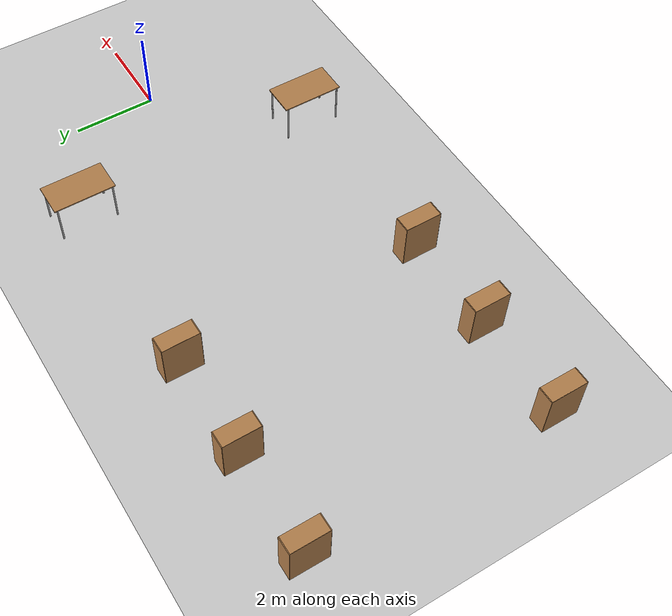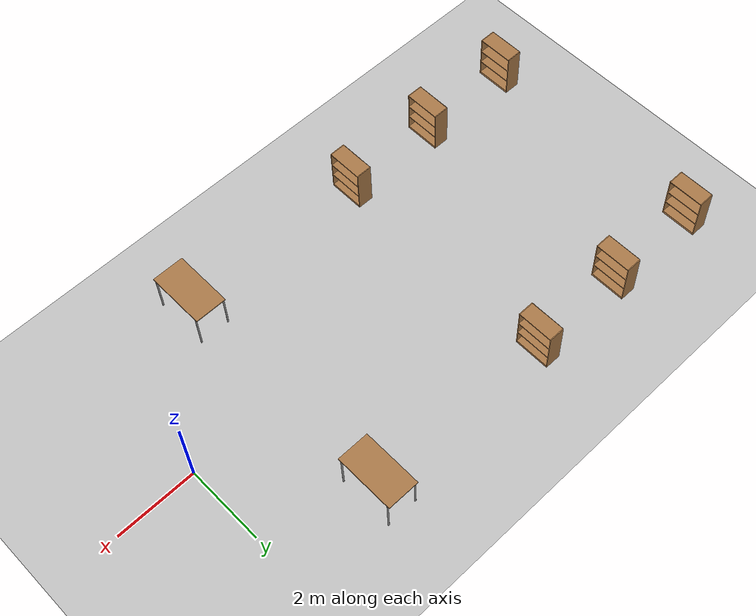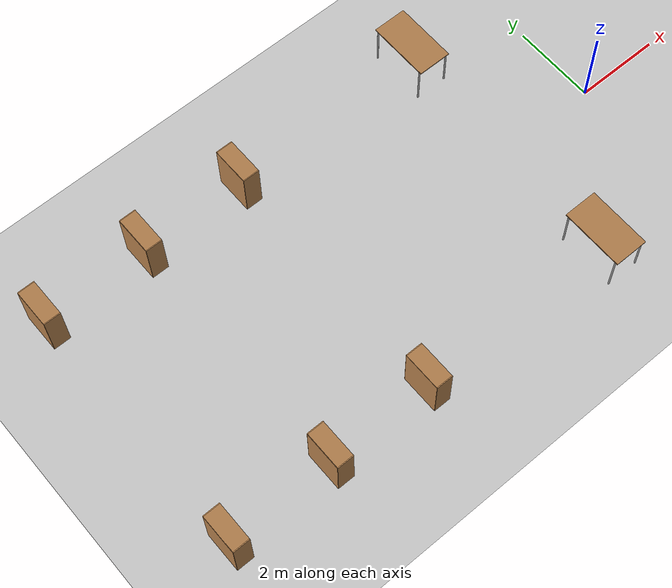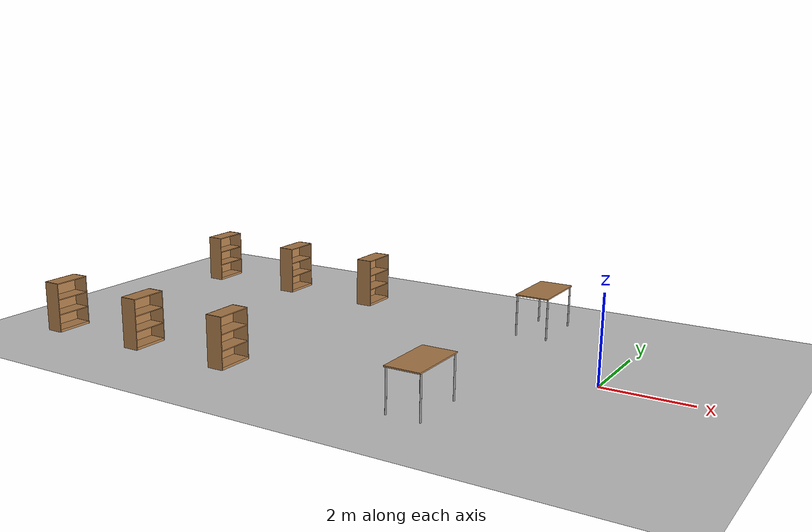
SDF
<sdf version="1.6">
 <world name="default">
  <model name="ground_plane">
   <static>1</static>
   <link name="link">
    <collision name="collision">
     <geometry><plane><normal>0 0 1</normal><size>100 100</size></plane></geometry>
     <surface><friction><ode><mu>100</mu><mu2>50</mu2></ode></friction></surface>
    </collision>
    <visual name="visual">
     <cast_shadows>0</cast_shadows>
     <geometry><plane><normal>0 0 1</normal><size>100 100</size></plane></geometry>
     <material>
      <script><uri>file://media/materials/scripts/gazebo.material</uri><name>Gazebo/Grey</name></script>
     </material>
    </visual>
   </link>
  </model>
  <model name="table">
   <static>1</static>
   <link name="link">
    <collision name="surface">
     <pose>0 0 1 0 -0 0</pose>
     <geometry><box><size>1.5 0.8 0.03</size></box></geometry>
     <surface><friction><ode><mu>0.6</mu><mu2>0.6</mu2></ode></friction></surface>
    </collision>
    <visual name="visual1">
     <pose>0 0 1 0 -0 0</pose>
     <geometry><box><size>1.5 0.8 0.03</size></box></geometry>
     <material>
      <script><uri>file://media/materials/scripts/gazebo.material</uri><name>Gazebo/Wood</name></script>
     </material>
    </visual>
    <collision name="front_left_leg">
     <pose>0.68 0.38 0.5 0 -0 0</pose>
     <geometry><cylinder><radius>0.02</radius><length>1</length></cylinder></geometry>
    </collision>
    <visual name="front_left_leg">
     <pose>0.68 0.38 0.5 0 -0 0</pose>
     <geometry><cylinder><radius>0.02</radius><length>1</length></cylinder></geometry>
     <material>
      <script><uri>file://media/materials/scripts/gazebo.material</uri><name>Gazebo/Grey</name></script>
     </material>
    </visual>
    <collision name="front_right_leg">
     <pose>0.68 -0.38 0.5 0 -0 0</pose>
     <geometry><cylinder><radius>0.02</radius><length>1</length></cylinder></geometry>
    </collision>
    <visual name="front_right_leg">
     <pose>0.68 -0.38 0.5 0 -0 0</pose>
     <geometry><cylinder><radius>0.02</radius><length>1</length></cylinder></geometry>
     <material>
      <script><uri>file://media/materials/scripts/gazebo.material</uri><name>Gazebo/Grey</name></script>
     </material>
    </visual>
    <collision name="back_right_leg">
     <pose>-0.68 -0.38 0.5 0 -0 0</pose>
     <geometry><cylinder><radius>0.02</radius><length>1</length></cylinder></geometry>
    </collision>
    <visual name="back_right_leg">
     <pose>-0.68 -0.38 0.5 0 -0 0</pose>
     <geometry><cylinder><radius>0.02</radius><length>1</length></cylinder></geometry>
     <material>
      <script><uri>file://media/materials/scripts/gazebo.material</uri><name>Gazebo/Grey</name></script>
     </material>
    </visual>
    <collision name="back_left_leg">
     <pose>-0.68 0.38 0.5 0 -0 0</pose>
     <geometry><cylinder><radius>0.02</radius><length>1</length></cylinder></geometry>
    </collision>
    <visual name="back_left_leg">
     <pose>-0.68 0.38 0.5 0 -0 0</pose>
     <geometry><cylinder><radius>0.02</radius><length>1</length></cylinder></geometry>
     <material>
      <script><uri>file://media/materials/scripts/gazebo.material</uri><name>Gazebo/Grey</name></script>
     </material>
    </visual>
   </link>
   <pose>-2.5 3 0 0 -0 1.5707</pose>
  </model>
  <model name="table_clone_0">
   <static>1</static>
   <link name="link">
    <collision name="surface">
     <pose>0 0 1 0 -0 0</pose>
     <geometry><box><size>1.5 0.8 0.03</size></box></geometry>
     <surface><friction><ode><mu>0.6</mu><mu2>0.6</mu2></ode></friction></surface>
    </collision>
    <visual name="visual1">
     <pose>0 0 1 0 -0 0</pose>
     <geometry><box><size>1.5 0.8 0.03</size></box></geometry>
     <material>
      <script><uri>file://media/materials/scripts/gazebo.material</uri><name>Gazebo/Wood</name></script>
     </material>
    </visual>
    <collision name="front_left_leg">
     <pose>0.68 0.38 0.5 0 -0 0</pose>
     <geometry><cylinder><radius>0.02</radius><length>1</length></cylinder></geometry>
    </collision>
    <visual name="front_left_leg">
     <pose>0.68 0.38 0.5 0 -0 0</pose>
     <geometry><cylinder><radius>0.02</radius><length>1</length></cylinder></geometry>
     <material>
      <script><uri>file://media/materials/scripts/gazebo.material</uri><name>Gazebo/Grey</name></script>
     </material>
    </visual>
    <collision name="front_right_leg">
     <pose>0.68 -0.38 0.5 0 -0 0</pose>
     <geometry><cylinder><radius>0.02</radius><length>1</length></cylinder></geometry>
    </collision>
    <visual name="front_right_leg">
     <pose>0.68 -0.38 0.5 0 -0 0</pose>
     <geometry><cylinder><radius>0.02</radius><length>1</length></cylinder></geometry>
     <material>
      <script><uri>file://media/materials/scripts/gazebo.material</uri><name>Gazebo/Grey</name></script>
     </material>
    </visual>
    <collision name="back_right_leg">
     <pose>-0.68 -0.38 0.5 0 -0 0</pose>
     <geometry><cylinder><radius>0.02</radius><length>1</length></cylinder></geometry>
    </collision>
    <visual name="back_right_leg">
     <pose>-0.68 -0.38 0.5 0 -0 0</pose>
     <geometry><cylinder><radius>0.02</radius><length>1</length></cylinder></geometry>
     <material>
      <script><uri>file://media/materials/scripts/gazebo.material</uri><name>Gazebo/Grey</name></script>
     </material>
    </visual>
    <collision name="back_left_leg">
     <pose>-0.68 0.38 0.5 0 -0 0</pose>
     <geometry><cylinder><radius>0.02</radius><length>1</length></cylinder></geometry>
    </collision>
    <visual name="back_left_leg">
     <pose>-0.68 0.38 0.5 0 -0 0</pose>
     <geometry><cylinder><radius>0.02</radius><length>1</length></cylinder></geometry>
     <material>
      <script><uri>file://media/materials/scripts/gazebo.material</uri><name>Gazebo/Grey</name></script>
     </material>
    </visual>
   </link>
   <pose>-2.5 -3 0 0 -0 1.5707</pose>
  </model>
  <model name="bookshelf_0">
   <static>1</static>
   <link name="link">
    <inertial><mass>1</mass></inertial>
    <collision name="back">
     <pose>0 0.005 0.6 0 -0 0</pose>
     <geometry><box><size>0.9 0.01 1.2</size></box></geometry>
    </collision>
    <visual name="visual1">
     <pose>0 0.005 0.6 0 -0 0</pose>
     <geometry><box><size>0.9 0.01 1.2</size></box></geometry>
     <material>
      <script><uri>file://media/materials/scripts/gazebo.material</uri><name>Gazebo/Wood</name></script>
     </material>
    </visual>
    <collision name="left_side">
     <pose>0.45 -0.195 0.6 0 -0 0</pose>
     <geometry><box><size>0.02 0.4 1.2</size></box></geometry>
    </collision>
    <visual name="visual2">
     <pose>0.45 -0.195 0.6 0 -0 0</pose>
     <geometry><box><size>0.02 0.4 1.2</size></box></geometry>
     <material>
      <script><uri>file://media/materials/scripts/gazebo.material</uri><name>Gazebo/Wood</name></script>
     </material>
    </visual>
    <collision name="right_side">
     <pose>-0.45 -0.195 0.6 0 -0 0</pose>
     <geometry><box><size>0.02 0.4 1.2</size></box></geometry>
    </collision>
    <visual name="visual3">
     <pose>-0.45 -0.195 0.6 0 -0 0</pose>
     <geometry><box><size>0.02 0.4 1.2</size></box></geometry>
     <material>
      <script><uri>file://media/materials/scripts/gazebo.material</uri><name>Gazebo/Wood</name></script>
     </material>
    </visual>
    <collision name="bottom">
     <pose>0 -0.195 0.03 0 -0 0</pose>
     <geometry><box><size>0.88 0.4 0.06</size></box></geometry>
    </collision>
    <visual name="visual4">
     <pose>0 -0.195 0.03 0 -0 0</pose>
     <geometry><box><size>0.88 0.4 0.06</size></box></geometry>
     <material>
      <script><uri>file://media/materials/scripts/gazebo.material</uri><name>Gazebo/Wood</name></script>
     </material>
    </visual>
    <collision name="top">
     <pose>0 -0.195 1.19 0 -0 0</pose>
     <geometry><box><size>0.88 0.4 0.02</size></box></geometry>
    </collision>
    <visual name="visual5">
     <pose>0 -0.195 1.19 0 -0 0</pose>
     <geometry><box><size>0.88 0.4 0.02</size></box></geometry>
     <material>
      <script><uri>file://media/materials/scripts/gazebo.material</uri><name>Gazebo/Wood</name></script>
     </material>
    </visual>
    <collision name="low_shelf">
     <pose>0 -0.195 0.43 0 -0 0</pose>
     <geometry><box><size>0.88 0.4 0.02</size></box></geometry>
    </collision>
    <visual name="visual6">
     <pose>0 -0.195 0.43 0 -0 0</pose>
     <geometry><box><size>0.88 0.4 0.02</size></box></geometry>
     <material>
      <script><uri>file://media/materials/scripts/gazebo.material</uri><name>Gazebo/Wood</name></script>
     </material>
    </visual>
    <collision name="high_shelf">
     <pose>0 -0.195 0.8 0 -0 0</pose>
     <geometry><box><size>0.88 0.4 0.02</size></box></geometry>
    </collision>
    <visual name="visual7">
     <pose>0 -0.195 0.8 0 -0 0</pose>
     <geometry><box><size>0.88 0.4 0.02</size></box></geometry>
     <material>
      <script><uri>file://media/materials/scripts/gazebo.material</uri><name>Gazebo/Wood</name></script>
     </material>
    </visual>
   </link>
   <pose>-7.5 -3 0 0 -0 1.5707</pose>
  </model>
  <model name="bookshelf_0_clone">
   <static>1</static>
   <link name="link">
    <inertial><mass>1</mass></inertial>
    <collision name="back">
     <pose>0 0.005 0.6 0 -0 0</pose>
     <geometry><box><size>0.9 0.01 1.2</size></box></geometry>
    </collision>
    <visual name="visual1">
     <pose>0 0.005 0.6 0 -0 0</pose>
     <geometry><box><size>0.9 0.01 1.2</size></box></geometry>
     <material>
      <script><uri>file://media/materials/scripts/gazebo.material</uri><name>Gazebo/Wood</name></script>
     </material>
    </visual>
    <collision name="left_side">
     <pose>0.45 -0.195 0.6 0 -0 0</pose>
     <geometry><box><size>0.02 0.4 1.2</size></box></geometry>
    </collision>
    <visual name="visual2">
     <pose>0.45 -0.195 0.6 0 -0 0</pose>
     <geometry><box><size>0.02 0.4 1.2</size></box></geometry>
     <material>
      <script><uri>file://media/materials/scripts/gazebo.material</uri><name>Gazebo/Wood</name></script>
     </material>
    </visual>
    <collision name="right_side">
     <pose>-0.45 -0.195 0.6 0 -0 0</pose>
     <geometry><box><size>0.02 0.4 1.2</size></box></geometry>
    </collision>
    <visual name="visual3">
     <pose>-0.45 -0.195 0.6 0 -0 0</pose>
     <geometry><box><size>0.02 0.4 1.2</size></box></geometry>
     <material>
      <script><uri>file://media/materials/scripts/gazebo.material</uri><name>Gazebo/Wood</name></script>
     </material>
    </visual>
    <collision name="bottom">
     <pose>0 -0.195 0.03 0 -0 0</pose>
     <geometry><box><size>0.88 0.4 0.06</size></box></geometry>
    </collision>
    <visual name="visual4">
     <pose>0 -0.195 0.03 0 -0 0</pose>
     <geometry><box><size>0.88 0.4 0.06</size></box></geometry>
     <material>
      <script><uri>file://media/materials/scripts/gazebo.material</uri><name>Gazebo/Wood</name></script>
     </material>
    </visual>
    <collision name="top">
     <pose>0 -0.195 1.19 0 -0 0</pose>
     <geometry><box><size>0.88 0.4 0.02</size></box></geometry>
    </collision>
    <visual name="visual5">
     <pose>0 -0.195 1.19 0 -0 0</pose>
     <geometry><box><size>0.88 0.4 0.02</size></box></geometry>
     <material>
      <script><uri>file://media/materials/scripts/gazebo.material</uri><name>Gazebo/Wood</name></script>
     </material>
    </visual>
    <collision name="low_shelf">
     <pose>0 -0.195 0.43 0 -0 0</pose>
     <geometry><box><size>0.88 0.4 0.02</size></box></geometry>
    </collision>
    <visual name="visual6">
     <pose>0 -0.195 0.43 0 -0 0</pose>
     <geometry><box><size>0.88 0.4 0.02</size></box></geometry>
     <material>
      <script><uri>file://media/materials/scripts/gazebo.material</uri><name>Gazebo/Wood</name></script>
     </material>
    </visual>
    <collision name="high_shelf">
     <pose>0 -0.195 0.8 0 -0 0</pose>
     <geometry><box><size>0.88 0.4 0.02</size></box></geometry>
    </collision>
    <visual name="visual7">
     <pose>0 -0.195 0.8 0 -0 0</pose>
     <geometry><box><size>0.88 0.4 0.02</size></box></geometry>
     <material>
      <script><uri>file://media/materials/scripts/gazebo.material</uri><name>Gazebo/Wood</name></script>
     </material>
    </visual>
   </link>
   <pose>-10 -3 0 0 -0 1.5707</pose>
  </model>
  <model name="bookshelf_0_clone_0">
   <static>1</static>
   <link name="link">
    <inertial><mass>1</mass></inertial>
    <collision name="back">
     <pose>0 0.005 0.6 0 -0 0</pose>
     <geometry><box><size>0.9 0.01 1.2</size></box></geometry>
    </collision>
    <visual name="visual1">
     <pose>0 0.005 0.6 0 -0 0</pose>
     <geometry><box><size>0.9 0.01 1.2</size></box></geometry>
     <material>
      <script><uri>file://media/materials/scripts/gazebo.material</uri><name>Gazebo/Wood</name></script>
     </material>
    </visual>
    <collision name="left_side">
     <pose>0.45 -0.195 0.6 0 -0 0</pose>
     <geometry><box><size>0.02 0.4 1.2</size></box></geometry>
    </collision>
    <visual name="visual2">
     <pose>0.45 -0.195 0.6 0 -0 0</pose>
     <geometry><box><size>0.02 0.4 1.2</size></box></geometry>
     <material>
      <script><uri>file://media/materials/scripts/gazebo.material</uri><name>Gazebo/Wood</name></script>
     </material>
    </visual>
    <collision name="right_side">
     <pose>-0.45 -0.195 0.6 0 -0 0</pose>
     <geometry><box><size>0.02 0.4 1.2</size></box></geometry>
    </collision>
    <visual name="visual3">
     <pose>-0.45 -0.195 0.6 0 -0 0</pose>
     <geometry><box><size>0.02 0.4 1.2</size></box></geometry>
     <material>
      <script><uri>file://media/materials/scripts/gazebo.material</uri><name>Gazebo/Wood</name></script>
     </material>
    </visual>
    <collision name="bottom">
     <pose>0 -0.195 0.03 0 -0 0</pose>
     <geometry><box><size>0.88 0.4 0.06</size></box></geometry>
    </collision>
    <visual name="visual4">
     <pose>0 -0.195 0.03 0 -0 0</pose>
     <geometry><box><size>0.88 0.4 0.06</size></box></geometry>
     <material>
      <script><uri>file://media/materials/scripts/gazebo.material</uri><name>Gazebo/Wood</name></script>
     </material>
    </visual>
    <collision name="top">
     <pose>0 -0.195 1.19 0 -0 0</pose>
     <geometry><box><size>0.88 0.4 0.02</size></box></geometry>
    </collision>
    <visual name="visual5">
     <pose>0 -0.195 1.19 0 -0 0</pose>
     <geometry><box><size>0.88 0.4 0.02</size></box></geometry>
     <material>
      <script><uri>file://media/materials/scripts/gazebo.material</uri><name>Gazebo/Wood</name></script>
     </material>
    </visual>
    <collision name="low_shelf">
     <pose>0 -0.195 0.43 0 -0 0</pose>
     <geometry><box><size>0.88 0.4 0.02</size></box></geometry>
    </collision>
    <visual name="visual6">
     <pose>0 -0.195 0.43 0 -0 0</pose>
     <geometry><box><size>0.88 0.4 0.02</size></box></geometry>
     <material>
      <script><uri>file://media/materials/scripts/gazebo.material</uri><name>Gazebo/Wood</name></script>
     </material>
    </visual>
    <collision name="high_shelf">
     <pose>0 -0.195 0.8 0 -0 0</pose>
     <geometry><box><size>0.88 0.4 0.02</size></box></geometry>
    </collision>
    <visual name="visual7">
     <pose>0 -0.195 0.8 0 -0 0</pose>
     <geometry><box><size>0.88 0.4 0.02</size></box></geometry>
     <material>
      <script><uri>file://media/materials/scripts/gazebo.material</uri><name>Gazebo/Wood</name></script>
     </material>
    </visual>
   </link>
   <pose>-12.5 -3 0 0 -0 1.5707</pose>
  </model>
  <model name="bookshelf_0_clone_1">
   <static>1</static>
   <link name="link">
    <inertial><mass>1</mass></inertial>
    <collision name="back">
     <pose>0 0.005 0.6 0 -0 0</pose>
     <geometry><box><size>0.9 0.01 1.2</size></box></geometry>
    </collision>
    <visual name="visual1">
     <pose>0 0.005 0.6 0 -0 0</pose>
     <geometry><box><size>0.9 0.01 1.2</size></box></geometry>
     <material>
      <script><uri>file://media/materials/scripts/gazebo.material</uri><name>Gazebo/Wood</name></script>
     </material>
    </visual>
    <collision name="left_side">
     <pose>0.45 -0.195 0.6 0 -0 0</pose>
     <geometry><box><size>0.02 0.4 1.2</size></box></geometry>
    </collision>
    <visual name="visual2">
     <pose>0.45 -0.195 0.6 0 -0 0</pose>
     <geometry><box><size>0.02 0.4 1.2</size></box></geometry>
     <material>
      <script><uri>file://media/materials/scripts/gazebo.material</uri><name>Gazebo/Wood</name></script>
     </material>
    </visual>
    <collision name="right_side">
     <pose>-0.45 -0.195 0.6 0 -0 0</pose>
     <geometry><box><size>0.02 0.4 1.2</size></box></geometry>
    </collision>
    <visual name="visual3">
     <pose>-0.45 -0.195 0.6 0 -0 0</pose>
     <geometry><box><size>0.02 0.4 1.2</size></box></geometry>
     <material>
      <script><uri>file://media/materials/scripts/gazebo.material</uri><name>Gazebo/Wood</name></script>
     </material>
    </visual>
    <collision name="bottom">
     <pose>0 -0.195 0.03 0 -0 0</pose>
     <geometry><box><size>0.88 0.4 0.06</size></box></geometry>
    </collision>
    <visual name="visual4">
     <pose>0 -0.195 0.03 0 -0 0</pose>
     <geometry><box><size>0.88 0.4 0.06</size></box></geometry>
     <material>
      <script><uri>file://media/materials/scripts/gazebo.material</uri><name>Gazebo/Wood</name></script>
     </material>
    </visual>
    <collision name="top">
     <pose>0 -0.195 1.19 0 -0 0</pose>
     <geometry><box><size>0.88 0.4 0.02</size></box></geometry>
    </collision>
    <visual name="visual5">
     <pose>0 -0.195 1.19 0 -0 0</pose>
     <geometry><box><size>0.88 0.4 0.02</size></box></geometry>
     <material>
      <script><uri>file://media/materials/scripts/gazebo.material</uri><name>Gazebo/Wood</name></script>
     </material>
    </visual>
    <collision name="low_shelf">
     <pose>0 -0.195 0.43 0 -0 0</pose>
     <geometry><box><size>0.88 0.4 0.02</size></box></geometry>
    </collision>
    <visual name="visual6">
     <pose>0 -0.195 0.43 0 -0 0</pose>
     <geometry><box><size>0.88 0.4 0.02</size></box></geometry>
     <material>
      <script><uri>file://media/materials/scripts/gazebo.material</uri><name>Gazebo/Wood</name></script>
     </material>
    </visual>
    <collision name="high_shelf">
     <pose>0 -0.195 0.8 0 -0 0</pose>
     <geometry><box><size>0.88 0.4 0.02</size></box></geometry>
    </collision>
    <visual name="visual7">
     <pose>0 -0.195 0.8 0 -0 0</pose>
     <geometry><box><size>0.88 0.4 0.02</size></box></geometry>
     <material>
      <script><uri>file://media/materials/scripts/gazebo.material</uri><name>Gazebo/Wood</name></script>
     </material>
    </visual>
   </link>
   <pose>-7.5 3 0 0 -0 1.5707</pose>
  </model>
  <model name="bookshelf_0_clone_2">
   <static>1</static>
   <link name="link">
    <inertial><mass>1</mass></inertial>
    <collision name="back">
     <pose>0 0.005 0.6 0 -0 0</pose>
     <geometry><box><size>0.9 0.01 1.2</size></box></geometry>
    </collision>
    <visual name="visual1">
     <pose>0 0.005 0.6 0 -0 0</pose>
     <geometry><box><size>0.9 0.01 1.2</size></box></geometry>
     <material>
      <script><uri>file://media/materials/scripts/gazebo.material</uri><name>Gazebo/Wood</name></script>
     </material>
    </visual>
    <collision name="left_side">
     <pose>0.45 -0.195 0.6 0 -0 0</pose>
     <geometry><box><size>0.02 0.4 1.2</size></box></geometry>
    </collision>
    <visual name="visual2">
     <pose>0.45 -0.195 0.6 0 -0 0</pose>
     <geometry><box><size>0.02 0.4 1.2</size></box></geometry>
     <material>
      <script><uri>file://media/materials/scripts/gazebo.material</uri><name>Gazebo/Wood</name></script>
     </material>
    </visual>
    <collision name="right_side">
     <pose>-0.45 -0.195 0.6 0 -0 0</pose>
     <geometry><box><size>0.02 0.4 1.2</size></box></geometry>
    </collision>
    <visual name="visual3">
     <pose>-0.45 -0.195 0.6 0 -0 0</pose>
     <geometry><box><size>0.02 0.4 1.2</size></box></geometry>
     <material>
      <script><uri>file://media/materials/scripts/gazebo.material</uri><name>Gazebo/Wood</name></script>
     </material>
    </visual>
    <collision name="bottom">
     <pose>0 -0.195 0.03 0 -0 0</pose>
     <geometry><box><size>0.88 0.4 0.06</size></box></geometry>
    </collision>
    <visual name="visual4">
     <pose>0 -0.195 0.03 0 -0 0</pose>
     <geometry><box><size>0.88 0.4 0.06</size></box></geometry>
     <material>
      <script><uri>file://media/materials/scripts/gazebo.material</uri><name>Gazebo/Wood</name></script>
     </material>
    </visual>
    <collision name="top">
     <pose>0 -0.195 1.19 0 -0 0</pose>
     <geometry><box><size>0.88 0.4 0.02</size></box></geometry>
    </collision>
    <visual name="visual5">
     <pose>0 -0.195 1.19 0 -0 0</pose>
     <geometry><box><size>0.88 0.4 0.02</size></box></geometry>
     <material>
      <script><uri>file://media/materials/scripts/gazebo.material</uri><name>Gazebo/Wood</name></script>
     </material>
    </visual>
    <collision name="low_shelf">
     <pose>0 -0.195 0.43 0 -0 0</pose>
     <geometry><box><size>0.88 0.4 0.02</size></box></geometry>
    </collision>
    <visual name="visual6">
     <pose>0 -0.195 0.43 0 -0 0</pose>
     <geometry><box><size>0.88 0.4 0.02</size></box></geometry>
     <material>
      <script><uri>file://media/materials/scripts/gazebo.material</uri><name>Gazebo/Wood</name></script>
     </material>
    </visual>
    <collision name="high_shelf">
     <pose>0 -0.195 0.8 0 -0 0</pose>
     <geometry><box><size>0.88 0.4 0.02</size></box></geometry>
    </collision>
    <visual name="visual7">
     <pose>0 -0.195 0.8 0 -0 0</pose>
     <geometry><box><size>0.88 0.4 0.02</size></box></geometry>
     <material>
      <script><uri>file://media/materials/scripts/gazebo.material</uri><name>Gazebo/Wood</name></script>
     </material>
    </visual>
   </link>
   <pose>-10 3 0 0 -0 1.5707</pose>
  </model>
  <model name="bookshelf_0_clone_3">
   <static>1</static>
   <link name="link">
    <inertial><mass>1</mass></inertial>
    <collision name="back">
     <pose>0 0.005 0.6 0 -0 0</pose>
     <geometry><box><size>0.9 0.01 1.2</size></box></geometry>
    </collision>
    <visual name="visual1">
     <pose>0 0.005 0.6 0 -0 0</pose>
     <geometry><box><size>0.9 0.01 1.2</size></box></geometry>
     <material>
      <script><uri>file://media/materials/scripts/gazebo.material</uri><name>Gazebo/Wood</name></script>
     </material>
    </visual>
    <collision name="left_side">
     <pose>0.45 -0.195 0.6 0 -0 0</pose>
     <geometry><box><size>0.02 0.4 1.2</size></box></geometry>
    </collision>
    <visual name="visual2">
     <pose>0.45 -0.195 0.6 0 -0 0</pose>
     <geometry><box><size>0.02 0.4 1.2</size></box></geometry>
     <material>
      <script><uri>file://media/materials/scripts/gazebo.material</uri><name>Gazebo/Wood</name></script>
     </material>
    </visual>
    <collision name="right_side">
     <pose>-0.45 -0.195 0.6 0 -0 0</pose>
     <geometry><box><size>0.02 0.4 1.2</size></box></geometry>
    </collision>
    <visual name="visual3">
     <pose>-0.45 -0.195 0.6 0 -0 0</pose>
     <geometry><box><size>0.02 0.4 1.2</size></box></geometry>
     <material>
      <script><uri>file://media/materials/scripts/gazebo.material</uri><name>Gazebo/Wood</name></script>
     </material>
    </visual>
    <collision name="bottom">
     <pose>0 -0.195 0.03 0 -0 0</pose>
     <geometry><box><size>0.88 0.4 0.06</size></box></geometry>
    </collision>
    <visual name="visual4">
     <pose>0 -0.195 0.03 0 -0 0</pose>
     <geometry><box><size>0.88 0.4 0.06</size></box></geometry>
     <material>
      <script><uri>file://media/materials/scripts/gazebo.material</uri><name>Gazebo/Wood</name></script>
     </material>
    </visual>
    <collision name="top">
     <pose>0 -0.195 1.19 0 -0 0</pose>
     <geometry><box><size>0.88 0.4 0.02</size></box></geometry>
    </collision>
    <visual name="visual5">
     <pose>0 -0.195 1.19 0 -0 0</pose>
     <geometry><box><size>0.88 0.4 0.02</size></box></geometry>
     <material>
      <script><uri>file://media/materials/scripts/gazebo.material</uri><name>Gazebo/Wood</name></script>
     </material>
    </visual>
    <collision name="low_shelf">
     <pose>0 -0.195 0.43 0 -0 0</pose>
     <geometry><box><size>0.88 0.4 0.02</size></box></geometry>
    </collision>
    <visual name="visual6">
     <pose>0 -0.195 0.43 0 -0 0</pose>
     <geometry><box><size>0.88 0.4 0.02</size></box></geometry>
     <material>
      <script><uri>file://media/materials/scripts/gazebo.material</uri><name>Gazebo/Wood</name></script>
     </material>
    </visual>
    <collision name="high_shelf">
     <pose>0 -0.195 0.8 0 -0 0</pose>
     <geometry><box><size>0.88 0.4 0.02</size></box></geometry>
    </collision>
    <visual name="visual7">
     <pose>0 -0.195 0.8 0 -0 0</pose>
     <geometry><box><size>0.88 0.4 0.02</size></box></geometry>
     <material>
      <script><uri>file://media/materials/scripts/gazebo.material</uri><name>Gazebo/Wood</name></script>
     </material>
    </visual>
   </link>
   <pose>-12.5 3 0 0 -0 1.5707</pose>
  </model>
 </world>
</sdf>
